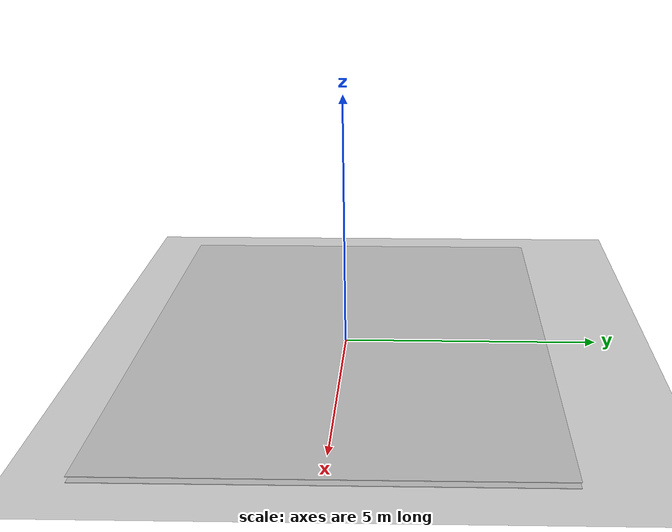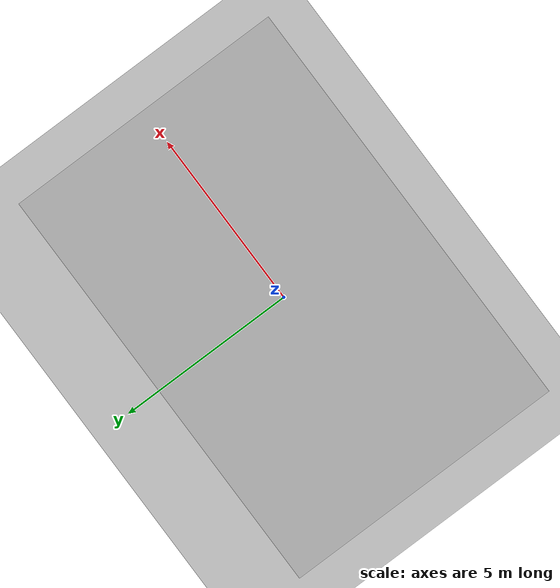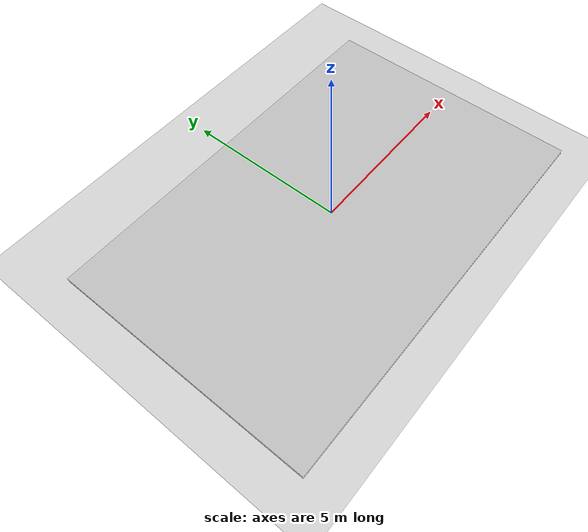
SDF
<?xml version="1.0" ?>
<!--
  Demo of models being downloaded from http://app.gazebosim.org/
-->
<sdf version="1.6">
  <world name="arena">
    <plugin
      filename="gz-sim-physics-system"
      name="gz::sim::systems::Physics">
    </plugin>
    <plugin
      filename="gz-sim-user-commands-system"
      name="gz::sim::systems::UserCommands">
    </plugin>
    <plugin
      filename="gz-sim-scene-broadcaster-system"
      name="gz::sim::systems::SceneBroadcaster">
    </plugin>
    <plugin
      filename="gz-sim-sensors-system"
      name="gz::sim::systems::Sensors">
      <render_engine>ogre2</render_engine>
    </plugin>
    <plugin
      filename="gz-sim-imu-system"
      name="gz::sim::systems::Imu">
    </plugin>
    <plugin
      filename="gz-sim-air-speed-system"
      name="gz::sim::systems::AirSpeed">
    </plugin>
    <plugin
      name='gz::sim::systems::AirPressure'
      filename='gz-sim-air-pressure-system'>
    </plugin>

    <light type="directional" name="sun">
      <cast_shadows>true</cast_shadows>
      <pose>0 0 10 0 0 0</pose>
      <diffuse>0.8 0.8 0.8 1</diffuse>
      <specular>0.2 0.2 0.2 1</specular>
      <attenuation>
        <range>1000</range>
        <constant>0.9</constant>
        <linear>0.01</linear>
        <quadratic>0.001</quadratic>
      </attenuation>
      <direction>-0.5 0.1 -0.9</direction>
    </light>

    <model name="ground_plane">
      <static>true</static>
      <link name="link">
        <collision name="collision">
          <geometry>
            <plane>
              <normal>0 0 1</normal>
              <size>100 100</size>
            </plane>
          </geometry>
        </collision>
        <visual name="visual">
          <geometry>
            <plane>
              <normal>0 0 1</normal>
              <size>100 100</size>
            </plane>
          </geometry>
          <material>
            <ambient>0.8 0.8 0.8 1</ambient>
            <diffuse>0.8 0.8 0.8 1</diffuse>
            <specular>0.8 0.8 0.8 1</specular>
          </material>
        </visual>
      </link>
    </model>

  <include>
    <uri>model://home/vehicle_gateway/install/share/vehicle_gateway_worlds/models/warehouse/model.sdf</uri>
  </include>

  <include>
    <uri>model://home/vehicle_gateway/install/share/vehicle_gateway_worlds/models/arena_spawn/model.sdf</uri>
  </include>

  </world>
</sdf>

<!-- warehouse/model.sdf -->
<sdf version='1.9'>
  <model name='warehouse'>
    <pose>0 0 0 0 0 0</pose>
    <self_collide>false</self_collide>
    <!-- BASE_LINK FRAME -->
    <link name='warehouse_base'>
      <pose>0 0 0 0 0 0</pose>
      <collision name='warehouse_collision'>
        <pose>0 0 0 0 0 0</pose>
        <geometry>
          <mesh>
            <scale>1 1 1</scale>
            <uri>/home/vehicle_gateway/install/share/vehicle_gateway_worlds/models/warehouse/meshes/warehouse_colision.stl</uri>
          </mesh>
        </geometry>
      </collision>
      <visual name='warehouse_visual'>
        <pose>0 0 0 0 0 0</pose>
        <geometry>
          <mesh>
            <scale>1 1 1</scale>
            <uri>/home/vehicle_gateway/install/share/vehicle_gateway_worlds/models/warehouse/meshes/warehouse.dae</uri>
          </mesh>
        </geometry>
      </visual>
      <visual name="drop_area_visual">
        <pose>0 0 0.101 0 0 0</pose>
        <geometry>
          <mesh>
            <scale>1 1 1</scale>
            <uri>/home/vehicle_gateway/install/share/vehicle_gateway_worlds/models/warehouse/meshes/warehouse.dae</uri>
            <submesh>
              <name>drop1</name>
              <center>true</center>
            </submesh>
          </mesh>
        </geometry>
      </visual>
    </link>
    <static>1</static>
  </model>
</sdf>
